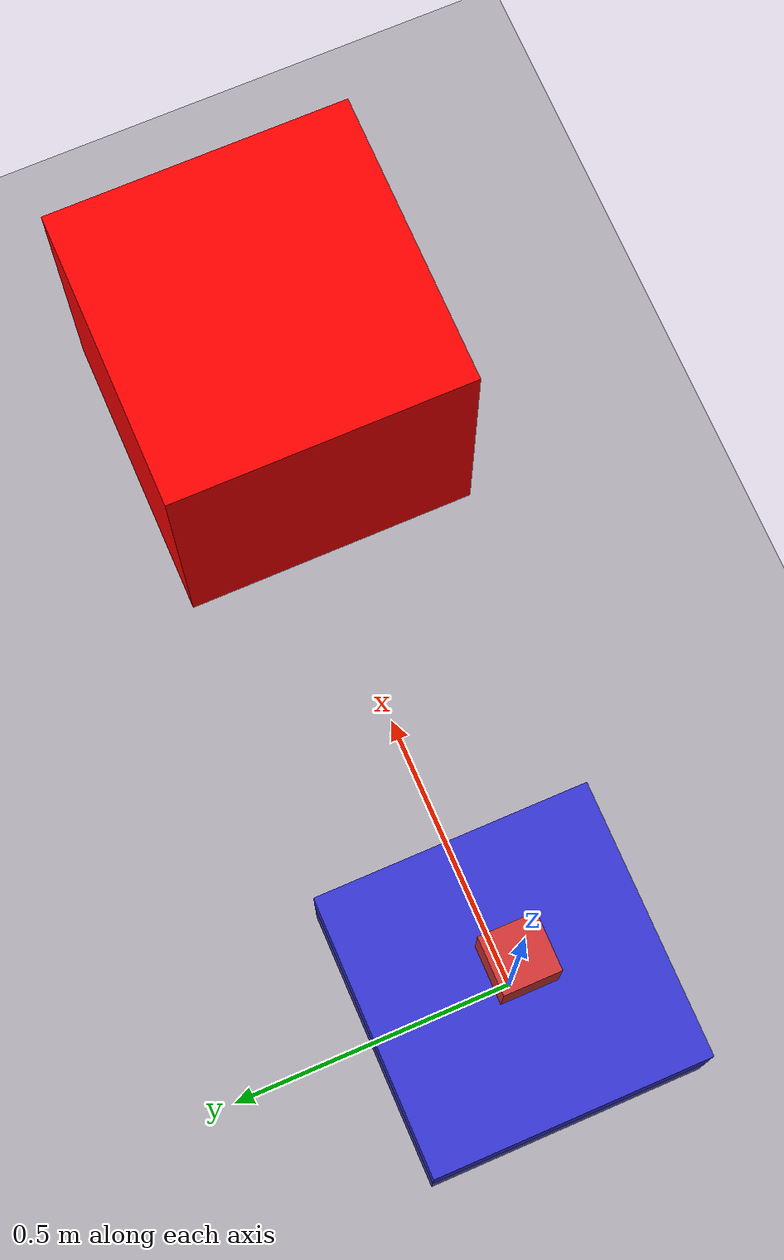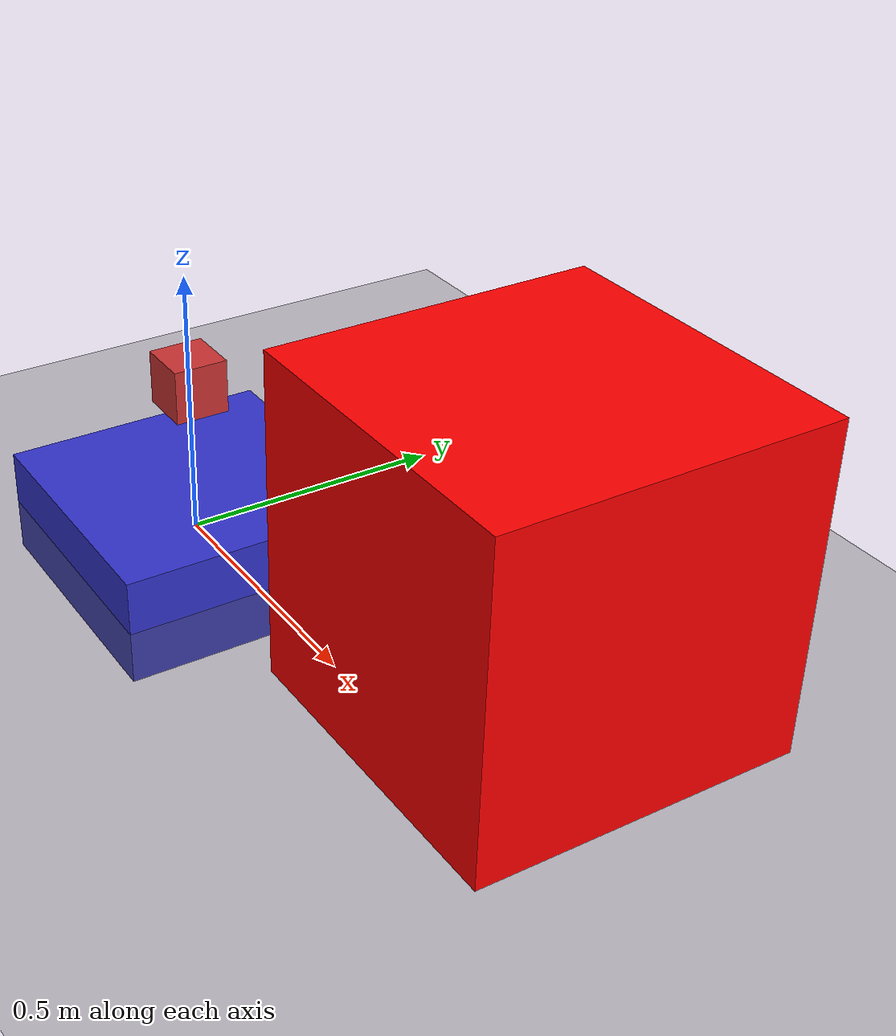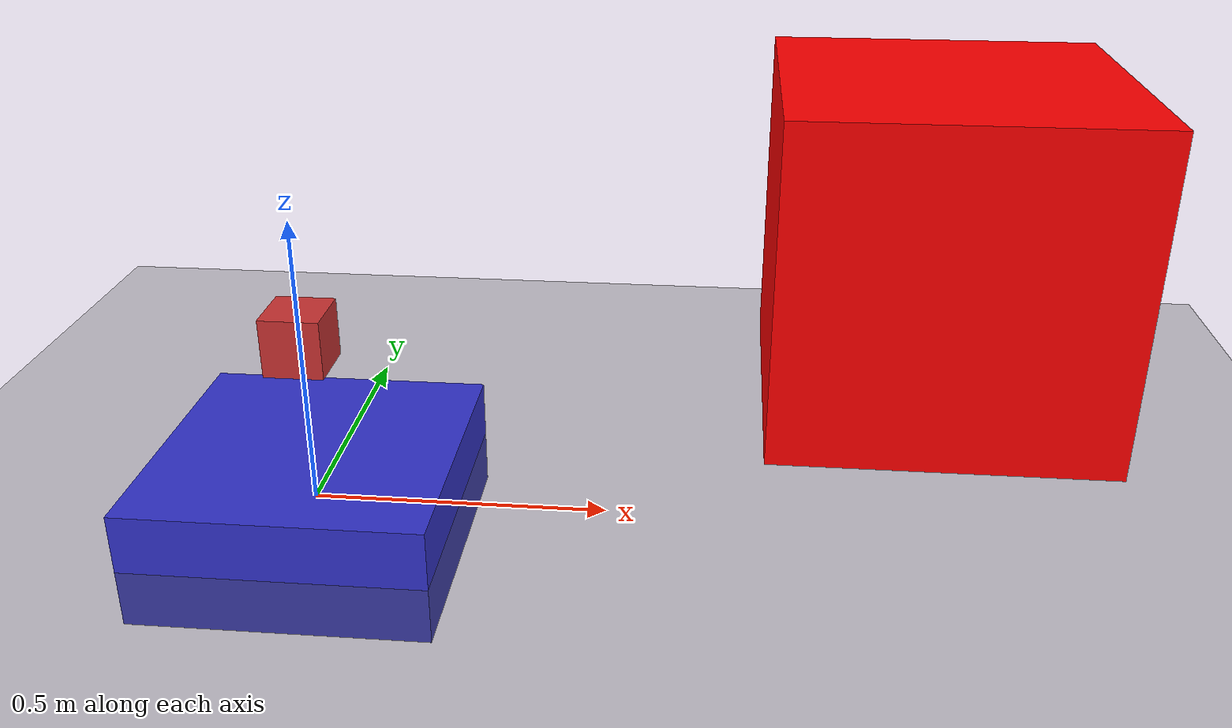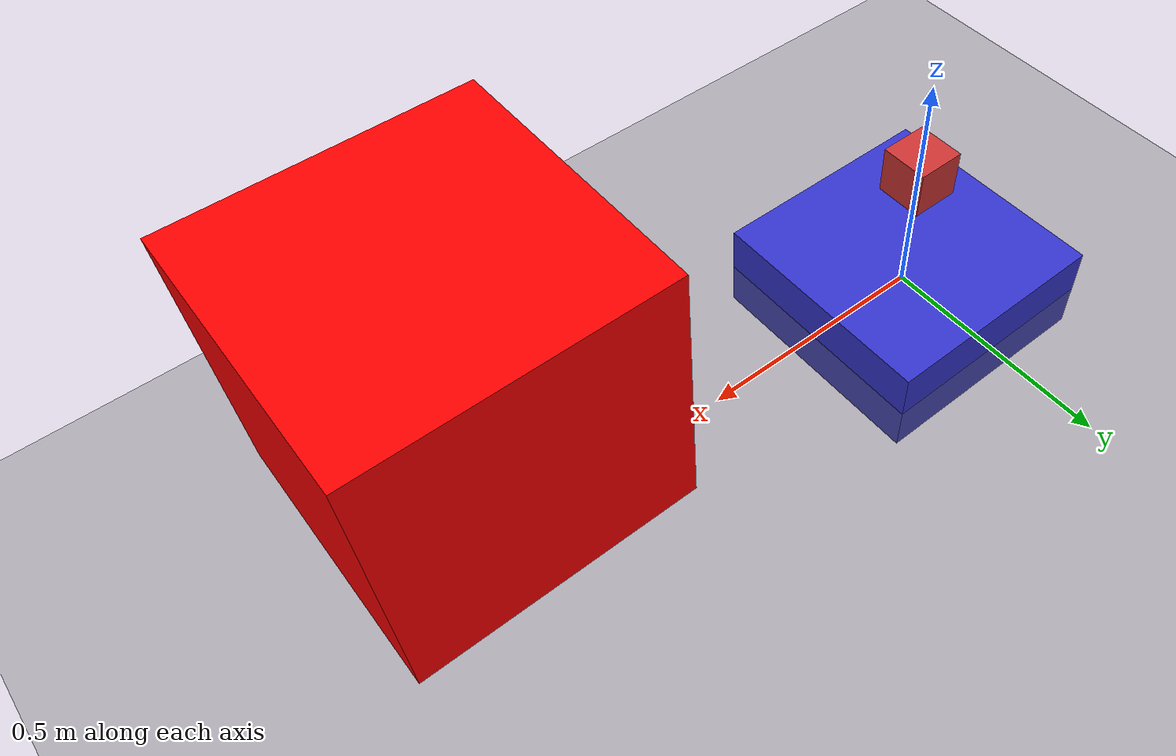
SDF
<?xml version="1.0" ?>
<sdf version="1.6">
  <world name="default">

    <!-- Luz direccional -->
    <light name="sun" type="directional">
      <pose>0 0 10 0 0 0</pose>
      <diffuse>1 1 1 1</diffuse>
      <specular>0.1 0.1 0.1 1</specular>
      <attenuation>
        <range>1000</range>
        <constant>0.9</constant>
        <linear>0.01</linear>
        <quadratic>0.001</quadratic>
      </attenuation>
      <direction>-0.5 0.1 -1</direction>
    </light>

    <!-- Suelo plano -->
    <model name="ground_plane">
      <static>true</static>
      <link name="link">
        <collision name="collision">
          <geometry>
            <plane>
              <normal>0 0 1</normal>
              <size>100 100</size>
            </plane>
          </geometry>
        </collision>
        <visual name="visual">
          <geometry>
            <plane>
              <normal>0 0 1</normal>
              <size>100 100</size>
            </plane>
          </geometry>
          <material>
            <ambient>0.3 0.3 0.3 1</ambient>
            <diffuse>0.3 0.3 0.3 1</diffuse>
          </material>
        </visual>
      </link>
    </model>

    <!-- Robot -->
    <model name="my_robot">
      <pose>0 0 0 0 0 0</pose>
      <link name="base_link">
        <visual name="visual">
          <geometry>
            <box><size>0.5 0.5 0.2</size></box>
          </geometry>
          <material>
            <ambient>0.2 0.2 0.8 1</ambient>
            <diffuse>0.2 0.2 0.8 1</diffuse>
          </material>
        </visual>
        <collision name="collision">
          <geometry>
            <box><size>0.5 0.5 0.2</size></box>
          </geometry>
        </collision>
      </link>

      <link name="camera_link">
        <pose>0 0 0.3 0 0 0</pose>
        <visual name="visual">
          <geometry>
            <box><size>0.1 0.1 0.1</size></box>
          </geometry>
          <material>
            <ambient>0.8 0.2 0.2 1</ambient>
            <diffuse>0.8 0.2 0.2 1</diffuse>
          </material>
        </visual>
        <collision name="collision">
          <geometry>
            <box><size>0.1 0.1 0.1</size></box>
          </geometry>
        </collision>

        <!-- Sensor de cámara -->
        <sensor name="camera_sensor" type="camera">
          <update_rate>30</update_rate>
          <camera>
            <horizontal_fov>1.047</horizontal_fov>
            <image>
              <width>640</width>
              <height>480</height>
              <format>R8G8B8</format>
            </image>
            <clip>
              <near>0.1</near>
              <far>100</far>
            </clip>
          </camera>
          <always_on>1</always_on>
          <visualize>1</visualize>
        </sensor>
      </link>
    </model>

    <!-- Caja roja -->
    <model name="red_box">
      <static>true</static>
      <pose>1 0 0.5 0 0 0</pose>
      <link name="link">
        <visual name="visual">
          <geometry>
            <box><size>0.5 0.5 0.5</size></box>
          </geometry>
          <material>
            <ambient>1 0 0 1</ambient>
            <diffuse>1 0 0 1</diffuse>
          </material>
        </visual>
        <collision name="collision">
          <geometry>
            <box><size>0.5 0.5 0.5</size></box>
          </geometry>
        </collision>
      </link>
    </model>

  </world>
</sdf>
